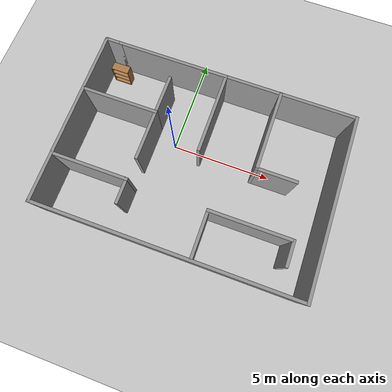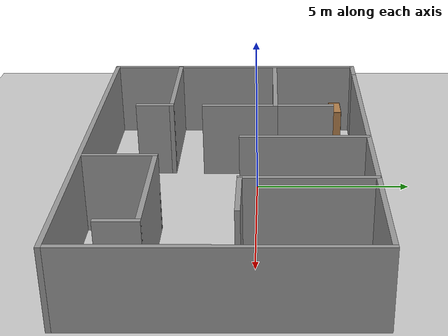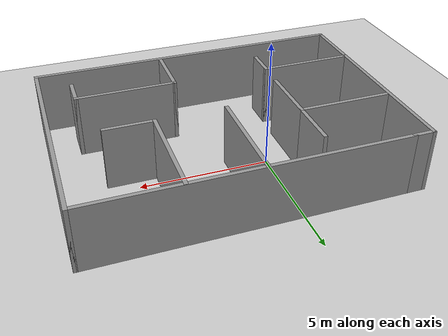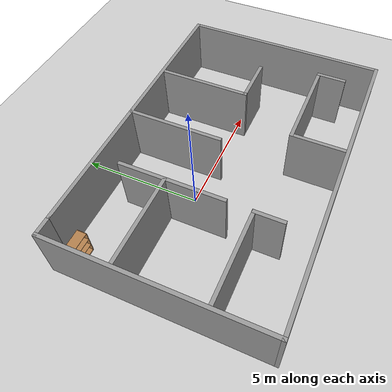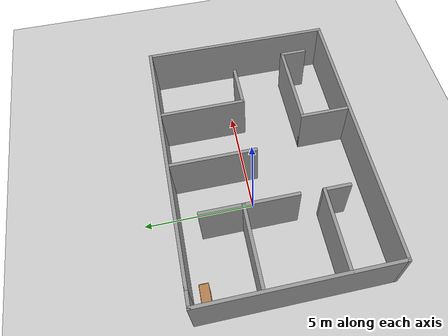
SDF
<sdf version="1.7">
 <world name="default">
  <light name="sun" type="directional">
   <pose>0 0 10 0 -0 0</pose>
   <diffuse>0.8 0.8 0.8 1</diffuse>
   <specular>0.2 0.2 0.2 1</specular>
   <attenuation>
    <range>1000</range>
    <constant>0.9</constant>
    <linear>0.01</linear>
    <quadratic>0.001</quadratic>
   </attenuation>
   <direction>-0.5 0.1 -0.9</direction>
   <spot><inner_angle>0</inner_angle><outer_angle>0</outer_angle><falloff>0</falloff></spot>
  </light>
  <model name="ground_plane">
   <static>1</static>
   <link name="link">
    <collision name="collision">
     <geometry><plane><normal>0 0 1</normal><size>100 100</size></plane></geometry>
     <surface><friction><ode><mu>100</mu><mu2>50</mu2></ode></friction></surface>
    </collision>
    <visual name="visual">
     <cast_shadows>0</cast_shadows>
     <geometry><plane><normal>0 0 1</normal><size>100 100</size></plane></geometry>
     <material>
      <script><uri>file://media/materials/scripts/gazebo.material</uri><name>Gazebo/Grey</name></script>
     </material>
    </visual>
   </link>
  </model>
  <gravity>0 0 -9.8</gravity>
  <magnetic_field>6e-06 2.3e-05 -4.2e-05</magnetic_field>
  <atmosphere type="adiabatic"/>
  <physics type="ode">
   <max_step_size>0.001</max_step_size>
   <real_time_factor>1</real_time_factor>
   <real_time_update_rate>1000</real_time_update_rate>
  </physics>
  <scene><ambient>0.4 0.4 0.4 1</ambient><background>0.7 0.7 0.7 1</background><shadows>1</shadows></scene>
  <audio><device>default</device></audio>
  <spherical_coordinates>
   <surface_model>EARTH_WGS84</surface_model>
   <latitude_deg>0</latitude_deg>
   <longitude_deg>0</longitude_deg>
   <elevation>0</elevation>
   <heading_deg>0</heading_deg>
  </spherical_coordinates>
  <model name="test">
   <pose>1.5572 -0.866997 0 0 -0 0</pose>
   <link name="Wall_10">
    <collision name="Wall_10_Collision">
     <geometry><box><size>0.9 0.15 2.5</size></box></geometry>
     <pose>0 0 1.25 0 -0 0</pose>
    </collision>
    <visual name="Wall_10_Visual">
     <pose>0 0 1.25 0 -0 0</pose>
     <geometry><box><size>0.9 0.15 2.5</size></box></geometry>
     <material>
      <script><uri>file://media/materials/scripts/gazebo.material</uri><name>Gazebo/Grey</name></script>
      <ambient>1 1 1 1</ambient>
     </material>
     <meta><layer>0</layer></meta>
    </visual>
    <pose>-5.925 4.3 0 0 -0 0</pose>
   </link>
   <link name="Wall_12">
    <collision name="Wall_12_Collision">
     <geometry><box><size>3.75 0.15 2.5</size></box></geometry>
     <pose>0 0 1.25 0 -0 0</pose>
    </collision>
    <visual name="Wall_12_Visual">
     <pose>0 0 1.25 0 -0 0</pose>
     <geometry><box><size>3.75 0.15 2.5</size></box></geometry>
     <material>
      <script><uri>file://media/materials/scripts/gazebo.material</uri><name>Gazebo/Grey</name></script>
      <ambient>1 1 1 1</ambient>
     </material>
     <meta><layer>0</layer></meta>
    </visual>
    <pose>-4.4108 1.46443 0 0 -0 0</pose>
   </link>
   <link name="Wall_14">
    <collision name="Wall_14_Collision">
     <geometry><box><size>3.75 0.15 2.5</size></box></geometry>
     <pose>0 0 1.25 0 -0 0</pose>
    </collision>
    <visual name="Wall_14_Visual">
     <pose>0 0 1.25 0 -0 0</pose>
     <geometry><box><size>3.75 0.15 2.5</size></box></geometry>
     <material>
      <script><uri>file://media/materials/scripts/gazebo.material</uri><name>Gazebo/Grey</name></script>
      <ambient>1 1 1 1</ambient>
     </material>
     <meta><layer>0</layer></meta>
    </visual>
    <pose>-4.45102 -1.97499 0 0 -0 0</pose>
   </link>
   <link name="Wall_16">
    <collision name="Wall_16_Collision">
     <geometry><box><size>4 0.15 2.5</size></box></geometry>
     <pose>0 0 1.25 0 -0 0</pose>
    </collision>
    <visual name="Wall_16_Visual">
     <pose>0 0 1.25 0 -0 0</pose>
     <geometry><box><size>4 0.15 2.5</size></box></geometry>
     <material>
      <script><uri>file://media/materials/scripts/gazebo.material</uri><name>Gazebo/Grey</name></script>
      <ambient>1 1 1 1</ambient>
     </material>
     <meta><layer>0</layer></meta>
    </visual>
    <pose>2.63917 2.35533 0 0 -0 -1.5708</pose>
   </link>
   <link name="Wall_18">
    <collision name="Wall_18_Collision">
     <geometry><box><size>2.25 0.15 2.5</size></box></geometry>
     <pose>0 0 1.25 0 -0 0</pose>
    </collision>
    <visual name="Wall_18_Visual">
     <pose>0 0 1.25 0 -0 0</pose>
     <geometry><box><size>2.25 0.15 2.5</size></box></geometry>
     <material>
      <script><uri>file://media/materials/scripts/gazebo.material</uri><name>Gazebo/Grey</name></script>
      <ambient>1 1 1 1</ambient>
     </material>
     <meta><layer>0</layer></meta>
    </visual>
    <pose>1.21111 -3.11737 0 0 -0 1.5708</pose>
   </link>
   <link name="Wall_20">
    <collision name="Wall_20_Collision">
     <geometry><box><size>2 0.15 2.5</size></box></geometry>
     <pose>0 0 1.25 0 -0 0</pose>
    </collision>
    <visual name="Wall_20_Visual">
     <pose>0 0 1.25 0 -0 0</pose>
     <geometry><box><size>2 0.15 2.5</size></box></geometry>
     <material>
      <script><uri>file://media/materials/scripts/gazebo.material</uri><name>Gazebo/Grey</name></script>
      <ambient>1 1 1 1</ambient>
     </material>
     <meta><layer>0</layer></meta>
    </visual>
    <pose>3.56417 0.430334 0 0 -0 0</pose>
   </link>
   <link name="Wall_22">
    <collision name="Wall_22_Collision">
     <geometry><box><size>4 0.15 2.5</size></box></geometry>
     <pose>0 0 1.25 0 -0 0</pose>
    </collision>
    <visual name="Wall_22_Visual">
     <pose>0 0 1.25 0 -0 0</pose>
     <geometry><box><size>4 0.15 2.5</size></box></geometry>
     <material>
      <script><uri>file://media/materials/scripts/gazebo.material</uri><name>Gazebo/Grey</name></script>
      <ambient>1 1 1 1</ambient>
     </material>
     <meta><layer>0</layer></meta>
    </visual>
    <pose>-0.096272 2.33522 0 0 -0 -1.5708</pose>
   </link>
   <link name="Wall_24">
    <collision name="Wall_24_Collision">
     <geometry><box><size>1.25 0.15 2.5</size></box></geometry>
     <pose>0 0 1.25 0 -0 0</pose>
    </collision>
    <visual name="Wall_24_Visual">
     <pose>0 0 1.25 0 -0 0</pose>
     <geometry><box><size>1.25 0.15 2.5</size></box></geometry>
     <material>
      <script><uri>file://media/materials/scripts/gazebo.material</uri><name>Gazebo/Grey</name></script>
      <ambient>1 1 1 1</ambient>
     </material>
     <meta><layer>0</layer></meta>
    </visual>
    <pose>-2.65103 -2.52499 0 0 -0 -1.5708</pose>
   </link>
   <link name="Wall_26">
    <collision name="Wall_26_Collision">
     <geometry><box><size>2.5 0.15 2.5</size></box></geometry>
     <pose>0 0 1.25 0 -0 0</pose>
    </collision>
    <visual name="Wall_26_Visual">
     <pose>0 0 1.25 0 -0 0</pose>
     <geometry><box><size>2.5 0.15 2.5</size></box></geometry>
     <material>
      <script><uri>file://media/materials/scripts/gazebo.material</uri><name>Gazebo/Grey</name></script>
      <ambient>1 1 1 1</ambient>
     </material>
     <meta><layer>0</layer></meta>
    </visual>
    <pose>-2.6108 0.289434 0 0 -0 -1.5708</pose>
   </link>
   <link name="Wall_28">
    <collision name="Wall_28_Collision">
     <geometry><box><size>2 0.15 2.5</size></box></geometry>
     <pose>0 0 1.25 0 -0 0</pose>
    </collision>
    <visual name="Wall_28_Visual">
     <pose>0 0 1.25 0 -0 0</pose>
     <geometry><box><size>2 0.15 2.5</size></box></geometry>
     <material>
      <script><uri>file://media/materials/scripts/gazebo.material</uri><name>Gazebo/Grey</name></script>
      <ambient>1 1 1 1</ambient>
     </material>
     <meta><layer>0</layer></meta>
    </visual>
    <pose>-2.6108 2.38943 0 0 -0 1.5708</pose>
   </link>
   <link name="Wall_30">
    <collision name="Wall_30_Collision">
     <geometry><box><size>4 0.15 2.5</size></box></geometry>
     <pose>0 0 1.25 0 -0 0</pose>
    </collision>
    <visual name="Wall_30_Visual">
     <pose>0 0 1.25 0 -0 0</pose>
     <geometry><box><size>4 0.15 2.5</size></box></geometry>
     <material>
      <script><uri>file://media/materials/scripts/gazebo.material</uri><name>Gazebo/Grey</name></script>
      <ambient>1 1 1 1</ambient>
     </material>
     <meta><layer>0</layer></meta>
    </visual>
    <pose>3.13611 -2.06737 0 0 -0 0</pose>
   </link>
   <link name="Wall_32">
    <collision name="Wall_32_Collision">
     <geometry><box><size>1.25 0.15 2.5</size></box></geometry>
     <pose>0 0 1.25 0 -0 0</pose>
    </collision>
    <visual name="Wall_32_Visual">
     <pose>0 0 1.25 0 -0 0</pose>
     <geometry><box><size>1.25 0.15 2.5</size></box></geometry>
     <material>
      <script><uri>file://media/materials/scripts/gazebo.material</uri><name>Gazebo/Grey</name></script>
      <ambient>1 1 1 1</ambient>
     </material>
     <meta><layer>0</layer></meta>
    </visual>
    <pose>5.06111 -2.61737 0 0 -0 -1.5708</pose>
   </link>
   <link name="Wall_5">
    <collision name="Wall_5_Collision">
     <geometry><box><size>12 0.15 2.5</size></box></geometry>
     <pose>0 0 1.25 0 -0 0</pose>
    </collision>
    <visual name="Wall_5_Visual">
     <pose>0 0 1.25 0 -0 0</pose>
     <geometry><box><size>12 0.15 2.5</size></box></geometry>
     <material>
      <script><uri>file://media/materials/scripts/gazebo.material</uri><name>Gazebo/Grey</name></script>
      <ambient>1 1 1 1</ambient>
     </material>
     <meta><layer>0</layer></meta>
    </visual>
    <pose>0.375 4.3 0 0 -0 0</pose>
   </link>
   <link name="Wall_7">
    <collision name="Wall_7_Collision">
     <geometry><box><size>8.75 0.15 2.5</size></box></geometry>
     <pose>0 0 1.25 0 -0 0</pose>
    </collision>
    <visual name="Wall_7_Visual">
     <pose>0 0 1.25 0 -0 0</pose>
     <geometry><box><size>8.75 0.15 2.5</size></box></geometry>
     <material>
      <script><uri>file://media/materials/scripts/gazebo.material</uri><name>Gazebo/Grey</name></script>
      <ambient>1 1 1 1</ambient>
     </material>
     <meta><layer>0</layer></meta>
    </visual>
    <pose>6.3 0 0 0 -0 -1.5708</pose>
   </link>
   <link name="Wall_8">
    <collision name="Wall_8_Collision">
     <geometry><box><size>12.75 0.15 2.5</size></box></geometry>
     <pose>0 0 1.25 0 -0 0</pose>
    </collision>
    <visual name="Wall_8_Visual">
     <pose>0 0 1.25 0 -0 0</pose>
     <geometry><box><size>12.75 0.15 2.5</size></box></geometry>
     <material>
      <script><uri>file://media/materials/scripts/gazebo.material</uri><name>Gazebo/Grey</name></script>
      <ambient>1 1 1 1</ambient>
     </material>
     <meta><layer>0</layer></meta>
    </visual>
    <pose>0 -4.3 0 0 -0 3.14159</pose>
   </link>
   <link name="Wall_9">
    <collision name="Wall_9_Collision">
     <geometry><box><size>8.75 0.15 2.5</size></box></geometry>
     <pose>0 0 1.25 0 -0 0</pose>
    </collision>
    <visual name="Wall_9_Visual">
     <pose>0 0 1.25 0 -0 0</pose>
     <geometry><box><size>8.75 0.15 2.5</size></box></geometry>
     <material>
      <script><uri>file://media/materials/scripts/gazebo.material</uri><name>Gazebo/Grey</name></script>
      <ambient>1 1 1 1</ambient>
     </material>
     <meta><layer>0</layer></meta>
    </visual>
    <pose>-6.3 0 0 0 -0 1.5708</pose>
   </link>
   <static>1</static>
  </model>
  <model name="Bookshelf">
   <static>1</static>
   <link name="link">
    <inertial><mass>1</mass></inertial>
    <collision name="back">
     <pose>0 0.005 0.6 0 -0 0</pose>
     <geometry><box><size>0.9 0.01 1.2</size></box></geometry>
    </collision>
    <visual name="visual1">
     <pose>0 0.005 0.6 0 -0 0</pose>
     <geometry><box><size>0.9 0.01 1.2</size></box></geometry>
     <material>
      <diffuse>1 1 1 1</diffuse>
      <script><uri>file://media/materials/scripts/gazebo.material</uri><name>Gazebo/Wood</name></script>
      <pbr><metal><albedo_map>model://Bookshelf/bookshelf_diffuse.jpg</albedo_map></metal></pbr>
     </material>
    </visual>
    <collision name="left_side">
     <pose>0.45 -0.195 0.6 0 -0 0</pose>
     <geometry><box><size>0.02 0.4 1.2</size></box></geometry>
    </collision>
    <visual name="visual2">
     <pose>0.45 -0.195 0.6 0 -0 0</pose>
     <geometry><box><size>0.02 0.4 1.2</size></box></geometry>
     <material>
      <diffuse>1 1 1 1</diffuse>
      <script><uri>file://media/materials/scripts/gazebo.material</uri><name>Gazebo/Wood</name></script>
      <pbr><metal><albedo_map>model://Bookshelf/bookshelf_diffuse.jpg</albedo_map></metal></pbr>
     </material>
    </visual>
    <collision name="right_side">
     <pose>-0.45 -0.195 0.6 0 -0 0</pose>
     <geometry><box><size>0.02 0.4 1.2</size></box></geometry>
    </collision>
    <visual name="visual3">
     <pose>-0.45 -0.195 0.6 0 -0 0</pose>
     <geometry><box><size>0.02 0.4 1.2</size></box></geometry>
     <material>
      <diffuse>1 1 1 1</diffuse>
      <script><uri>file://media/materials/scripts/gazebo.material</uri><name>Gazebo/Wood</name></script>
      <pbr><metal><albedo_map>model://Bookshelf/bookshelf_diffuse.jpg</albedo_map></metal></pbr>
     </material>
    </visual>
    <collision name="bottom">
     <pose>0 -0.195 0.03 0 -0 0</pose>
     <geometry><box><size>0.88 0.4 0.06</size></box></geometry>
    </collision>
    <visual name="visual4">
     <pose>0 -0.195 0.03 0 -0 0</pose>
     <geometry><box><size>0.88 0.4 0.06</size></box></geometry>
     <material>
      <diffuse>1 1 1 1</diffuse>
      <script><uri>file://media/materials/scripts/gazebo.material</uri><name>Gazebo/Wood</name></script>
      <pbr><metal><albedo_map>model://Bookshelf/bookshelf_diffuse.jpg</albedo_map></metal></pbr>
     </material>
    </visual>
    <collision name="top">
     <pose>0 -0.195 1.19 0 -0 0</pose>
     <geometry><box><size>0.88 0.4 0.02</size></box></geometry>
    </collision>
    <visual name="visual5">
     <pose>0 -0.195 1.19 0 -0 0</pose>
     <geometry><box><size>0.88 0.4 0.02</size></box></geometry>
     <material>
      <diffuse>1 1 1 1</diffuse>
      <script><uri>file://media/materials/scripts/gazebo.material</uri><name>Gazebo/Wood</name></script>
      <pbr><metal><albedo_map>model://Bookshelf/bookshelf_diffuse.jpg</albedo_map></metal></pbr>
     </material>
    </visual>
    <collision name="low_shelf">
     <pose>0 -0.195 0.43 0 -0 0</pose>
     <geometry><box><size>0.88 0.4 0.02</size></box></geometry>
    </collision>
    <visual name="visual6">
     <pose>0 -0.195 0.43 0 -0 0</pose>
     <geometry><box><size>0.88 0.4 0.02</size></box></geometry>
     <material>
      <diffuse>1 1 1 1</diffuse>
      <script><uri>file://media/materials/scripts/gazebo.material</uri><name>Gazebo/Wood</name></script>
      <pbr><metal><albedo_map>model://Bookshelf/bookshelf_diffuse.jpg</albedo_map></metal></pbr>
     </material>
    </visual>
    <collision name="high_shelf">
     <pose>0 -0.195 0.8 0 -0 0</pose>
     <geometry><box><size>0.88 0.4 0.02</size></box></geometry>
    </collision>
    <visual name="visual7">
     <pose>0 -0.195 0.8 0 -0 0</pose>
     <geometry><box><size>0.88 0.4 0.02</size></box></geometry>
     <material>
      <diffuse>1 1 1 1</diffuse>
      <script><uri>file://media/materials/scripts/gazebo.material</uri><name>Gazebo/Wood</name></script>
      <pbr><metal><albedo_map>model://Bookshelf/bookshelf_diffuse.jpg</albedo_map></metal></pbr>
     </material>
    </visual>
   </link>
   <pose>-3.98759 2.9885 0 0 -0 0</pose>
  </model>
 </world>
</sdf>
